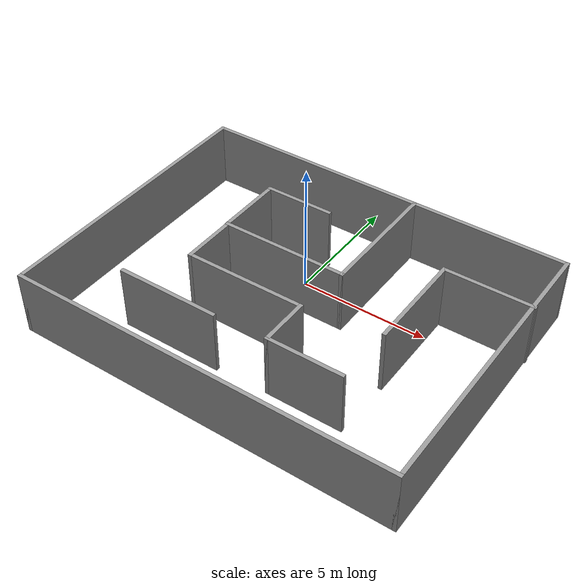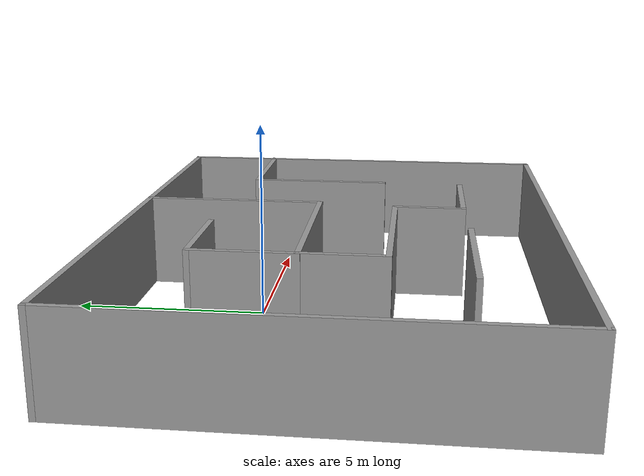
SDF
<?xml version='1.0'?>
<sdf version='1.6'>
  <model name='target_maze'>
    <pose frame=''>0.93332 -1.945 0 0 -0 0</pose>
    <link name='Wall_0'>
      <collision name='Wall_0_Collision'>
        <geometry>
          <box>
            <size>5 0.15 2.5</size>
          </box>
        </geometry>
        <pose frame=''>0 0 1.25 0 -0 0</pose>
      </collision>
      <visual name='Wall_0_Visual'>
        <pose frame=''>0 0 1.25 0 -0 0</pose>
        <geometry>
          <box>
            <size>5 0.15 2.5</size>
          </box>
        </geometry>
        <material>
          <script>
            <uri>file://media/materials/scripts/gazebo.material</uri>
            <name>Gazebo/Grey</name>
          </script>
          <ambient>1 1 1 1</ambient>
        </material>
      </visual>
      <pose frame=''>-1.02127 0.7 0 0 -0 0</pose>
    </link>
    <link name='Wall_10'>
      <collision name='Wall_10_Collision'>
        <geometry>
          <box>
            <size>11.25 0.15 2.5</size>
          </box>
        </geometry>
        <pose frame=''>0 0 1.25 0 -0 0</pose>
      </collision>
      <visual name='Wall_10_Visual'>
        <pose frame=''>0 0 1.25 0 -0 0</pose>
        <geometry>
          <box>
            <size>11.25 0.15 2.5</size>
          </box>
        </geometry>
        <material>
          <script>
            <uri>file://media/materials/scripts/gazebo.material</uri>
            <name>Gazebo/Grey</name>
          </script>
          <ambient>1 1 1 1</ambient>
        </material>
      </visual>
      <pose frame=''>7.40373 0 0 0 -0 1.5708</pose>
    </link>
    <link name='Wall_11'>
      <collision name='Wall_11_Collision'>
        <geometry>
          <box>
            <size>6.15 0.15 2.5</size>
          </box>
        </geometry>
        <pose frame=''>0 0 1.25 0 -0 0</pose>
      </collision>
      <visual name='Wall_11_Visual'>
        <pose frame=''>0 0 1.25 0 -0 0</pose>
        <geometry>
          <box>
            <size>6.15 0.15 2.5</size>
          </box>
        </geometry>
        <material>
          <script>
            <uri>file://media/materials/scripts/gazebo.material</uri>
            <name>Gazebo/Grey</name>
          </script>
          <ambient>1 1 1 1</ambient>
        </material>
      </visual>
      <pose frame=''>4.40373 5.55 0 0 -0 3.14159</pose>
    </link>
    <link name='Wall_13'>
      <collision name='Wall_13_Collision'>
        <geometry>
          <box>
            <size>2.25 0.15 2.5</size>
          </box>
        </geometry>
        <pose frame=''>0 0 1.25 0 -0 0</pose>
      </collision>
      <visual name='Wall_13_Visual'>
        <pose frame=''>0 0 1.25 0 -0 0</pose>
        <geometry>
          <box>
            <size>2.25 0.15 2.5</size>
          </box>
        </geometry>
        <material>
          <script>
            <uri>file://media/materials/scripts/gazebo.material</uri>
            <name>Gazebo/Grey</name>
          </script>
          <ambient>1 1 1 1</ambient>
        </material>
      </visual>
      <pose frame=''>-3.44627 -0.35 0 0 0 -1.5708</pose>
    </link>
    <link name='Wall_14'>
      <collision name='Wall_14_Collision'>
        <geometry>
          <box>
            <size>4.75 0.15 2.5</size>
          </box>
        </geometry>
        <pose frame=''>0 0 1.25 0 -0 0</pose>
      </collision>
      <visual name='Wall_14_Visual'>
        <pose frame=''>0 0 1.25 0 -0 0</pose>
        <geometry>
          <box>
            <size>4.75 0.15 2.5</size>
          </box>
        </geometry>
        <material>
          <script>
            <uri>file://media/materials/scripts/gazebo.material</uri>
            <name>Gazebo/Grey</name>
          </script>
          <ambient>1 1 1 1</ambient>
        </material>
      </visual>
      <pose frame=''>-1.14627 -1.4 0 0 -0 0</pose>
    </link>
    <link name='Wall_15'>
      <collision name='Wall_15_Collision'>
        <geometry>
          <box>
            <size>2 0.15 2.5</size>
          </box>
        </geometry>
        <pose frame=''>0 0 1.25 0 -0 0</pose>
      </collision>
      <visual name='Wall_15_Visual'>
        <pose frame=''>0 0 1.25 0 -0 0</pose>
        <geometry>
          <box>
            <size>2 0.15 2.5</size>
          </box>
        </geometry>
        <material>
          <script>
            <uri>file://media/materials/scripts/gazebo.material</uri>
            <name>Gazebo/Grey</name>
          </script>
          <ambient>1 1 1 1</ambient>
        </material>
      </visual>
      <pose frame=''>1.15373 -2.325 0 0 0 -1.5708</pose>
    </link>
    <link name='Wall_16'>
      <collision name='Wall_16_Collision'>
        <geometry>
          <box>
            <size>3 0.15 2.5</size>
          </box>
        </geometry>
        <pose frame=''>0 0 1.25 0 -0 0</pose>
      </collision>
      <visual name='Wall_16_Visual'>
        <pose frame=''>0 0 1.25 0 -0 0</pose>
        <geometry>
          <box>
            <size>3 0.15 2.5</size>
          </box>
        </geometry>
        <material>
          <script>
            <uri>file://media/materials/scripts/gazebo.material</uri>
            <name>Gazebo/Grey</name>
          </script>
          <ambient>1 1 1 1</ambient>
        </material>
      </visual>
      <pose frame=''>2.57873 -3.25 0 0 -0 0</pose>
    </link>
    <link name='Wall_19'>
      <collision name='Wall_19_Collision'>
        <geometry>
          <box>
            <size>2.75 0.15 2.5</size>
          </box>
        </geometry>
        <pose frame=''>0 0 1.25 0 -0 0</pose>
      </collision>
      <visual name='Wall_19_Visual'>
        <pose frame=''>0 0 1.25 0 -0 0</pose>
        <geometry>
          <box>
            <size>2.75 0.15 2.5</size>
          </box>
        </geometry>
        <material>
          <script>
            <uri>file://media/materials/scripts/gazebo.material</uri>
            <name>Gazebo/Grey</name>
          </script>
          <ambient>1 1 1 1</ambient>
        </material>
      </visual>
      <pose frame=''>-2.16768 3.30387 0 0 -0 3.14159</pose>
    </link>
    <link name='Wall_2'>
      <collision name='Wall_2_Collision'>
        <geometry>
          <box>
            <size>5 0.15 2.5</size>
          </box>
        </geometry>
        <pose frame=''>0 0 1.25 0 -0 0</pose>
      </collision>
      <visual name='Wall_2_Visual'>
        <pose frame=''>0 0 1.25 0 -0 0</pose>
        <geometry>
          <box>
            <size>5 0.15 2.5</size>
          </box>
        </geometry>
        <material>
          <script>
            <uri>file://media/materials/scripts/gazebo.material</uri>
            <name>Gazebo/Grey</name>
          </script>
          <ambient>1 1 1 1</ambient>
        </material>
      </visual>
      <pose frame=''>1.40373 3.125 0 0 -0 1.5708</pose>
    </link>
    <link name='Wall_20'>
      <collision name='Wall_20_Collision'>
        <geometry>
          <box>
            <size>2.75 0.15 2.5</size>
          </box>
        </geometry>
        <pose frame=''>0 0 1.25 0 -0 0</pose>
      </collision>
      <visual name='Wall_20_Visual'>
        <pose frame=''>0 0 1.25 0 -0 0</pose>
        <geometry>
          <box>
            <size>2.75 0.15 2.5</size>
          </box>
        </geometry>
        <material>
          <script>
            <uri>file://media/materials/scripts/gazebo.material</uri>
            <name>Gazebo/Grey</name>
          </script>
          <ambient>1 1 1 1</ambient>
        </material>
      </visual>
      <pose frame=''>-3.46768 2.00387 0 0 0 -1.5708</pose>
    </link>
    <link name='Wall_22'>
      <collision name='Wall_22_Collision'>
        <geometry>
          <box>
            <size>4 0.15 2.5</size>
          </box>
        </geometry>
        <pose frame=''>0 0 1.25 0 -0 0</pose>
      </collision>
      <visual name='Wall_22_Visual'>
        <pose frame=''>0 0 1.25 0 -0 0</pose>
        <geometry>
          <box>
            <size>4 0.15 2.5</size>
          </box>
        </geometry>
        <material>
          <script>
            <uri>file://media/materials/scripts/gazebo.material</uri>
            <name>Gazebo/Grey</name>
          </script>
          <ambient>1 1 1 1</ambient>
        </material>
      </visual>
      <pose frame=''>-2.86479 -3.3612 0 0 -0 0</pose>
    </link>
    <link name='Wall_25'>
      <collision name='Wall_25_Collision'>
        <geometry>
          <box>
            <size>4 0.15 2.5</size>
          </box>
        </geometry>
        <pose frame=''>0 0 1.25 0 -0 0</pose>
      </collision>
      <visual name='Wall_25_Visual'>
        <pose frame=''>0 0 1.25 0 -0 0</pose>
        <geometry>
          <box>
            <size>4 0.15 2.5</size>
          </box>
        </geometry>
        <material>
          <script>
            <uri>file://media/materials/scripts/gazebo.material</uri>
            <name>Gazebo/Grey</name>
          </script>
          <ambient>1 1 1 1</ambient>
        </material>
      </visual>
      <pose frame=''>4.09627 0.983046 0 0 -0 1.5708</pose>
    </link>
    <link name='Wall_26'>
      <collision name='Wall_26_Collision'>
        <geometry>
          <box>
            <size>3.5 0.15 2.5</size>
          </box>
        </geometry>
        <pose frame=''>0 0 1.25 0 -0 0</pose>
      </collision>
      <visual name='Wall_26_Visual'>
        <pose frame=''>0 0 1.25 0 -0 0</pose>
        <geometry>
          <box>
            <size>3.5 0.15 2.5</size>
          </box>
        </geometry>
        <material>
          <script>
            <uri>file://media/materials/scripts/gazebo.material</uri>
            <name>Gazebo/Grey</name>
          </script>
          <ambient>1 1 1 1</ambient>
        </material>
      </visual>
      <pose frame=''>5.77127 2.90805 0 0 -0 0</pose>
    </link>
    <link name='Wall_4'>
      <collision name='Wall_4_Collision'>
        <geometry>
          <box>
            <size>9 0.15 2.5</size>
          </box>
        </geometry>
        <pose frame=''>0 0 1.25 0 -0 0</pose>
      </collision>
      <visual name='Wall_4_Visual'>
        <pose frame=''>0 0 1.25 0 -0 0</pose>
        <geometry>
          <box>
            <size>9 0.15 2.5</size>
          </box>
        </geometry>
        <material>
          <script>
            <uri>file://media/materials/scripts/gazebo.material</uri>
            <name>Gazebo/Grey</name>
          </script>
          <ambient>1 1 1 1</ambient>
        </material>
      </visual>
      <pose frame=''>-3.02127 5.55 0 0 -0 3.14159</pose>
    </link>
    <link name='Wall_7'>
      <collision name='Wall_7_Collision'>
        <geometry>
          <box>
            <size>11.25 0.15 2.5</size>
          </box>
        </geometry>
        <pose frame=''>0 0 1.25 0 -0 0</pose>
      </collision>
      <visual name='Wall_7_Visual'>
        <pose frame=''>0 0 1.25 0 -0 0</pose>
        <geometry>
          <box>
            <size>11.25 0.15 2.5</size>
          </box>
        </geometry>
        <material>
          <script>
            <uri>file://media/materials/scripts/gazebo.material</uri>
            <name>Gazebo/Grey</name>
          </script>
          <ambient>1 1 1 1</ambient>
        </material>
      </visual>
      <pose frame=''>-7.44627 0 0 0 0 -1.5708</pose>
    </link>
    <link name='Wall_8'>
      <collision name='Wall_8_Collision'>
        <geometry>
          <box>
            <size>15 0.15 2.5</size>
          </box>
        </geometry>
        <pose frame=''>0 0 1.25 0 -0 0</pose>
      </collision>
      <visual name='Wall_8_Visual'>
        <pose frame=''>0 0 1.25 0 -0 0</pose>
        <geometry>
          <box>
            <size>15 0.15 2.5</size>
          </box>
        </geometry>
        <material>
          <script>
            <uri>file://media/materials/scripts/gazebo.material</uri>
            <name>Gazebo/Grey</name>
          </script>
          <ambient>1 1 1 1</ambient>
        </material>
      </visual>
      <pose frame=''>-0.021273 -5.55 0 0 -0 0</pose>
    </link>
    <static>1</static>
  </model>
</sdf>
